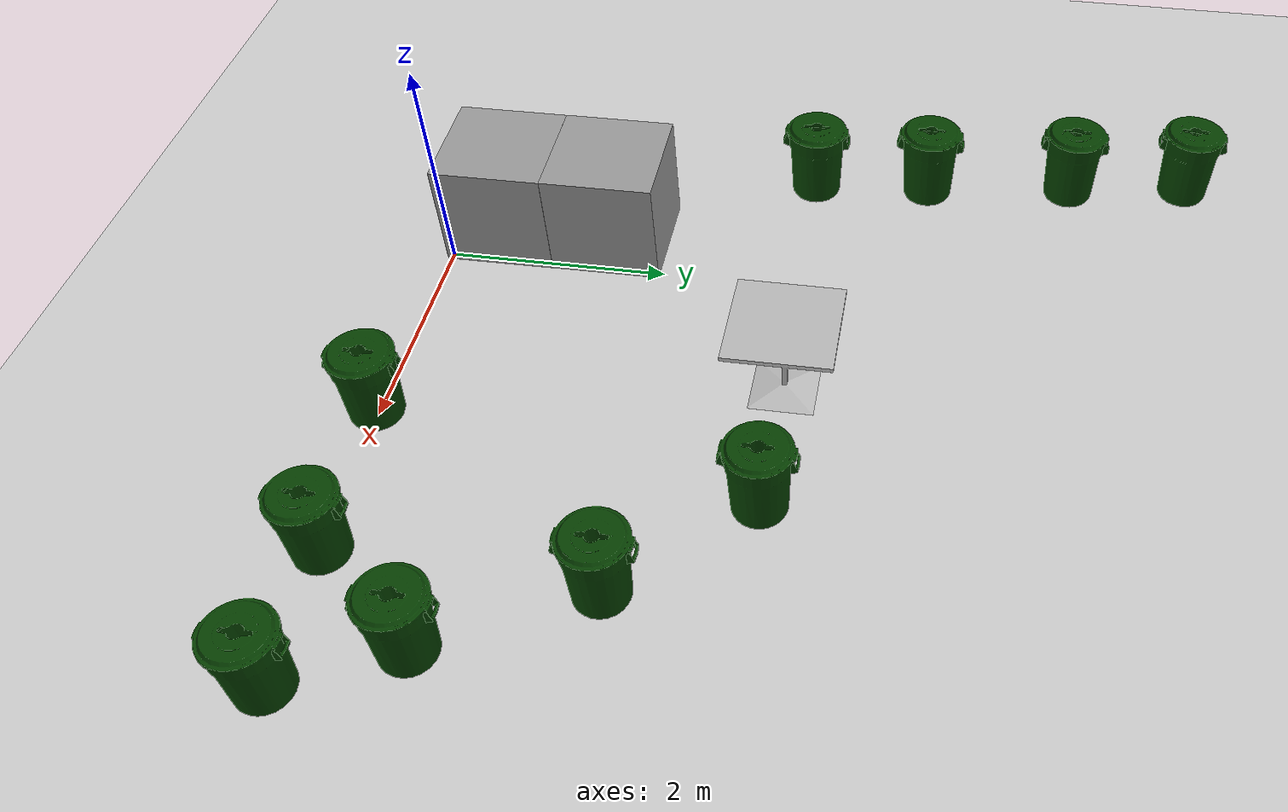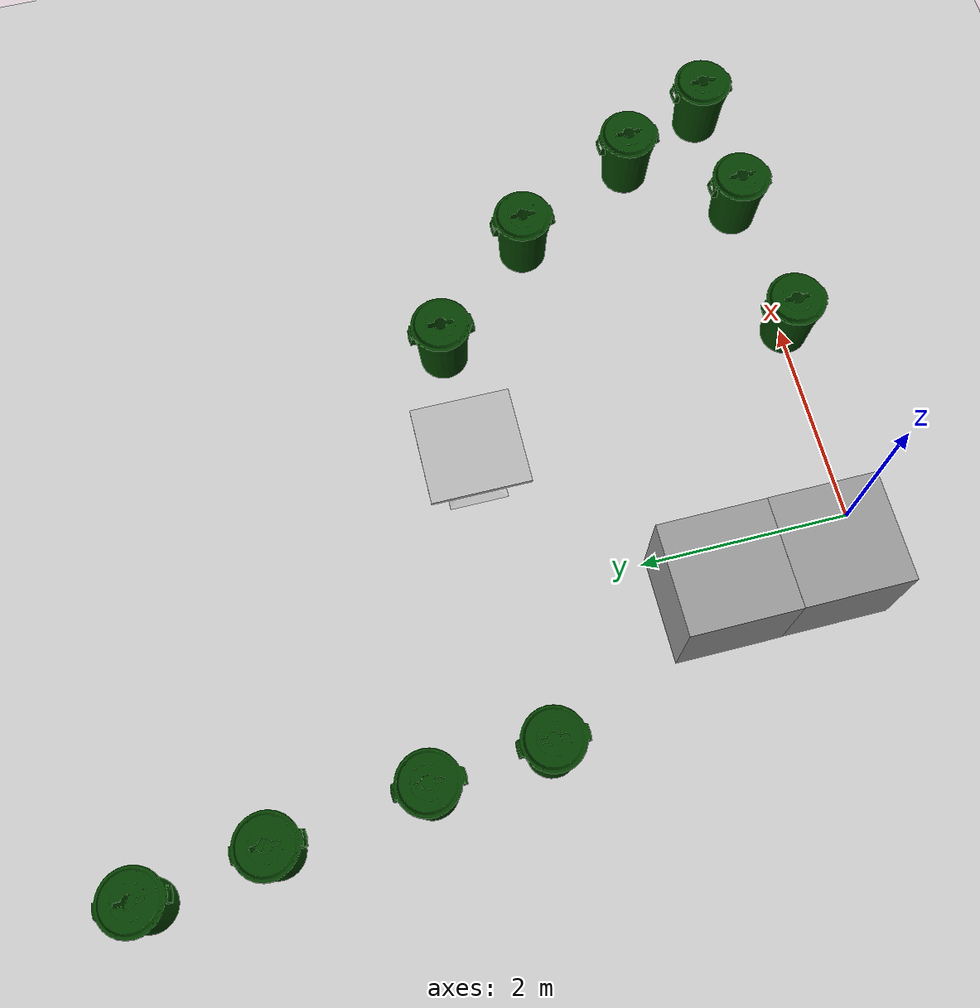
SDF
<sdf version="1.7">
 <world name="default">
  <light name="sun" type="directional">
   <pose>0 0 10 0 -0 0</pose>
   <diffuse>0.8 0.8 0.8 1</diffuse>
   <specular>0.2 0.2 0.2 1</specular>
   <attenuation>
    <range>1000</range>
    <constant>0.9</constant>
    <linear>0.01</linear>
    <quadratic>0.001</quadratic>
   </attenuation>
   <direction>-0.5 0.1 -0.9</direction>
   <spot><inner_angle>0</inner_angle><outer_angle>0</outer_angle><falloff>0</falloff></spot>
  </light>
  <model name="ground_plane">
   <static>1</static>
   <link name="link">
    <collision name="collision">
     <geometry><plane><normal>0 0 1</normal><size>100 100</size></plane></geometry>
     <surface><friction><ode><mu>100</mu><mu2>50</mu2></ode></friction></surface>
    </collision>
    <visual name="visual">
     <cast_shadows>0</cast_shadows>
     <geometry><plane><normal>0 0 1</normal><size>100 100</size></plane></geometry>
     <material>
      <script><uri>file://media/materials/scripts/gazebo.material</uri><name>Gazebo/Grey</name></script>
     </material>
    </visual>
   </link>
  </model>
  <gravity>0 0 -9.8</gravity>
  <magnetic_field>6e-06 2.3e-05 -4.2e-05</magnetic_field>
  <atmosphere type="adiabatic"/>
  <physics type="ode">
   <max_step_size>0.001</max_step_size>
   <real_time_factor>1</real_time_factor>
   <real_time_update_rate>1000</real_time_update_rate>
  </physics>
  <scene><ambient>0.4 0.4 0.4 1</ambient><background>0.7 0.7 0.7 1</background><shadows>1</shadows></scene>
  <audio><device>default</device></audio>
  <spherical_coordinates>
   <surface_model>EARTH_WGS84</surface_model>
   <latitude_deg>0</latitude_deg>
   <longitude_deg>0</longitude_deg>
   <elevation>0</elevation>
   <heading_deg>0</heading_deg>
  </spherical_coordinates>
  <model name="cafe_table">
   <static>1</static>
   <link name="link">
    <collision name="surface">
     <pose>0 0 0.755 0 -0 0</pose>
     <geometry><box><size>0.913 0.913 0.04</size></box></geometry>
    </collision>
    <collision name="column">
     <pose>0 0 0.37 0 -0 0</pose>
     <geometry><box><size>0.042 0.042 0.74</size></box></geometry>
    </collision>
    <collision name="base">
     <pose>0 0 0.02 0 -0 0</pose>
     <geometry><box><size>0.56 0.56 0.04</size></box></geometry>
    </collision>
    <visual name="visual">
     <geometry><mesh><uri>model://cafe_table/meshes/cafe_table.dae</uri></mesh></geometry>
    </visual>
   </link>
   <pose>1.22982 3.30517 0 0 -0 0</pose>
  </model>
  <model name="first_2015_trash_can">
   <link name="link">
    <inertial>
     <pose>0 0 0.3683 0 -0 0</pose>
     <mass>4.83076</mass>
     <inertia>
      <ixx>0.281534</ixx>
      <ixy>0</ixy>
      <ixz>0</ixz>
      <iyy>0.281534</iyy>
      <iyz>0</iyz>
      <izz>0.126223</izz>
     </inertia>
    </inertial>
    <visual name="visual">
     <geometry><mesh><uri>model://first_2015_trash_can/meshes/trash_can.dae</uri></mesh></geometry>
    </visual>
    <collision name="collision">
     <geometry><mesh><uri>model://first_2015_trash_can/meshes/trash_can.dae</uri></mesh></geometry>
    </collision>
   </link>
   <pose>2.50876 3.29544 -4e-06 -4e-06 4e-06 -0.001725</pose>
  </model>
  <model name="first_2015_trash_can_0">
   <link name="link">
    <inertial>
     <pose>0 0 0.3683 0 -0 0</pose>
     <mass>4.83076</mass>
     <inertia>
      <ixx>0.281534</ixx>
      <ixy>0</ixy>
      <ixz>0</ixz>
      <iyy>0.281534</iyy>
      <iyz>0</iyz>
      <izz>0.126223</izz>
     </inertia>
    </inertial>
    <visual name="visual">
     <geometry><mesh><uri>model://first_2015_trash_can/meshes/trash_can.dae</uri></mesh></geometry>
    </visual>
    <collision name="collision">
     <geometry><mesh><uri>model://first_2015_trash_can/meshes/trash_can.dae</uri></mesh></geometry>
    </collision>
   </link>
   <pose>3.47296 2.26577 -1.2e-05 4e-06 1.1e-05 -0.001254</pose>
  </model>
  <model name="first_2015_trash_can_1">
   <link name="link">
    <inertial>
     <pose>0 0 0.3683 0 -0 0</pose>
     <mass>4.83076</mass>
     <inertia>
      <ixx>0.281534</ixx>
      <ixy>0</ixy>
      <ixz>0</ixz>
      <iyy>0.281534</iyy>
      <iyz>0</iyz>
      <izz>0.126223</izz>
     </inertia>
    </inertial>
    <visual name="visual">
     <geometry><mesh><uri>model://first_2015_trash_can/meshes/trash_can.dae</uri></mesh></geometry>
    </visual>
    <collision name="collision">
     <geometry><mesh><uri>model://first_2015_trash_can/meshes/trash_can.dae</uri></mesh></geometry>
    </collision>
   </link>
   <pose>4.13818 1.01115 -3e-06 5e-06 1.2e-05 -0.001279</pose>
  </model>
  <model name="first_2015_trash_can_2">
   <link name="link">
    <inertial>
     <pose>0 0 0.3683 0 -0 0</pose>
     <mass>4.83076</mass>
     <inertia>
      <ixx>0.281534</ixx>
      <ixy>0</ixy>
      <ixz>0</ixz>
      <iyy>0.281534</iyy>
      <iyz>0</iyz>
      <izz>0.126223</izz>
     </inertia>
    </inertial>
    <visual name="visual">
     <geometry><mesh><uri>model://first_2015_trash_can/meshes/trash_can.dae</uri></mesh></geometry>
    </visual>
    <collision name="collision">
     <geometry><mesh><uri>model://first_2015_trash_can/meshes/trash_can.dae</uri></mesh></geometry>
    </collision>
   </link>
   <pose>4.56361 0.111609 -4e-06 1e-05 9e-06 -0.001421</pose>
  </model>
  <model name="unit_box">
   <pose>-0.451131 1.45572 0.499995 -1e-05 0 0.004504</pose>
   <link name="link">
    <inertial>
     <mass>1</mass>
     <inertia>
      <ixx>0.166667</ixx>
      <ixy>0</ixy>
      <ixz>0</ixz>
      <iyy>0.166667</iyy>
      <iyz>0</iyz>
      <izz>0.166667</izz>
     </inertia>
    </inertial>
    <collision name="collision"><geometry><box><size>1 1 1</size></box></geometry></collision>
    <visual name="visual">
     <geometry><box><size>1 1 1</size></box></geometry>
     <material>
      <script><name>Gazebo/Grey</name><uri>file://media/materials/scripts/gazebo.material</uri></script>
     </material>
    </visual>
   </link>
  </model>
  <model name="unit_box_0">
   <pose>-0.444398 0.455634 0.499995 -1e-05 0 0.004721</pose>
   <link name="link">
    <inertial>
     <mass>1</mass>
     <inertia>
      <ixx>0.166667</ixx>
      <ixy>0</ixy>
      <ixz>0</ixz>
      <iyy>0.166667</iyy>
      <iyz>0</iyz>
      <izz>0.166667</izz>
     </inertia>
    </inertial>
    <collision name="collision"><geometry><box><size>1 1 1</size></box></geometry></collision>
    <visual name="visual">
     <geometry><box><size>1 1 1</size></box></geometry>
     <material>
      <script><name>Gazebo/Grey</name><uri>file://media/materials/scripts/gazebo.material</uri></script>
     </material>
    </visual>
   </link>
  </model>
  <model name="first_2015_trash_can_3">
   <link name="link">
    <inertial>
     <pose>0 0 0.3683 0 -0 0</pose>
     <mass>4.83076</mass>
     <inertia>
      <ixx>0.281534</ixx>
      <ixy>0</ixy>
      <ixz>0</ixz>
      <iyy>0.281534</iyy>
      <iyz>0</iyz>
      <izz>0.126223</izz>
     </inertia>
    </inertial>
    <visual name="visual">
     <geometry><mesh><uri>model://first_2015_trash_can/meshes/trash_can.dae</uri></mesh></geometry>
    </visual>
    <collision name="collision">
     <geometry><mesh><uri>model://first_2015_trash_can/meshes/trash_can.dae</uri></mesh></geometry>
    </collision>
   </link>
   <pose>3.39431 0.069418 -2e-06 -3e-06 1.1e-05 -0.000758</pose>
  </model>
  <model name="first_2015_trash_can_4">
   <link name="link">
    <inertial>
     <pose>0 0 0.3683 0 -0 0</pose>
     <mass>4.83076</mass>
     <inertia>
      <ixx>0.281534</ixx>
      <ixy>0</ixy>
      <ixz>0</ixz>
      <iyy>0.281534</iyy>
      <iyz>0</iyz>
      <izz>0.126223</izz>
     </inertia>
    </inertial>
    <visual name="visual">
     <geometry><mesh><uri>model://first_2015_trash_can/meshes/trash_can.dae</uri></mesh></geometry>
    </visual>
    <collision name="collision">
     <geometry><mesh><uri>model://first_2015_trash_can/meshes/trash_can.dae</uri></mesh></geometry>
    </collision>
   </link>
   <pose>1.9734 -0.020858 -2e-06 7e-06 9e-06 -0.000385</pose>
  </model>
  <model name="first_2015_trash_can_5">
   <link name="link">
    <inertial>
     <pose>0 0 0.3683 0 -0 0</pose>
     <mass>4.83076</mass>
     <inertia>
      <ixx>0.281534</ixx>
      <ixy>0</ixy>
      <ixz>0</ixz>
      <iyy>0.281534</iyy>
      <iyz>0</iyz>
      <izz>0.126223</izz>
     </inertia>
    </inertial>
    <visual name="visual">
     <geometry><mesh><uri>model://first_2015_trash_can/meshes/trash_can.dae</uri></mesh></geometry>
    </visual>
    <collision name="collision">
     <geometry><mesh><uri>model://first_2015_trash_can/meshes/trash_can.dae</uri></mesh></geometry>
    </collision>
   </link>
   <pose>-1.43987 3.22497 -3e-06 0 -6e-06 -0.000563</pose>
  </model>
  <model name="first_2015_trash_can_6">
   <link name="link">
    <inertial>
     <pose>0 0 0.3683 0 -0 0</pose>
     <mass>4.83076</mass>
     <inertia>
      <ixx>0.281534</ixx>
      <ixy>0</ixy>
      <ixz>0</ixz>
      <iyy>0.281534</iyy>
      <iyz>0</iyz>
      <izz>0.126223</izz>
     </inertia>
    </inertial>
    <visual name="visual">
     <geometry><mesh><uri>model://first_2015_trash_can/meshes/trash_can.dae</uri></mesh></geometry>
    </visual>
    <collision name="collision">
     <geometry><mesh><uri>model://first_2015_trash_can/meshes/trash_can.dae</uri></mesh></geometry>
    </collision>
   </link>
   <pose>-1.53652 4.30455 -4e-06 1.6e-05 1.4e-05 -0.000294</pose>
  </model>
  <model name="first_2015_trash_can_7">
   <link name="link">
    <inertial>
     <pose>0 0 0.3683 0 -0 0</pose>
     <mass>4.83076</mass>
     <inertia>
      <ixx>0.281534</ixx>
      <ixy>0</ixy>
      <ixz>0</ixz>
      <iyy>0.281534</iyy>
      <iyz>0</iyz>
      <izz>0.126223</izz>
     </inertia>
    </inertial>
    <visual name="visual">
     <geometry><mesh><uri>model://first_2015_trash_can/meshes/trash_can.dae</uri></mesh></geometry>
    </visual>
    <collision name="collision">
     <geometry><mesh><uri>model://first_2015_trash_can/meshes/trash_can.dae</uri></mesh></geometry>
    </collision>
   </link>
   <pose>-1.70487 5.66698 -3e-06 6e-06 1.3e-05 -0.000197</pose>
  </model>
  <model name="first_2015_trash_can_8">
   <link name="link">
    <inertial>
     <pose>0 0 0.3683 0 -0 0</pose>
     <mass>4.83076</mass>
     <inertia>
      <ixx>0.281534</ixx>
      <ixy>0</ixy>
      <ixz>0</ixz>
      <iyy>0.281534</iyy>
      <iyz>0</iyz>
      <izz>0.126223</izz>
     </inertia>
    </inertial>
    <visual name="visual">
     <geometry><mesh><uri>model://first_2015_trash_can/meshes/trash_can.dae</uri></mesh></geometry>
    </visual>
    <collision name="collision">
     <geometry><mesh><uri>model://first_2015_trash_can/meshes/trash_can.dae</uri></mesh></geometry>
    </collision>
   </link>
   <pose>-1.86702 6.77561 -2e-06 6e-06 1.2e-05 -0.000117</pose>
  </model>
 </world>
</sdf>
